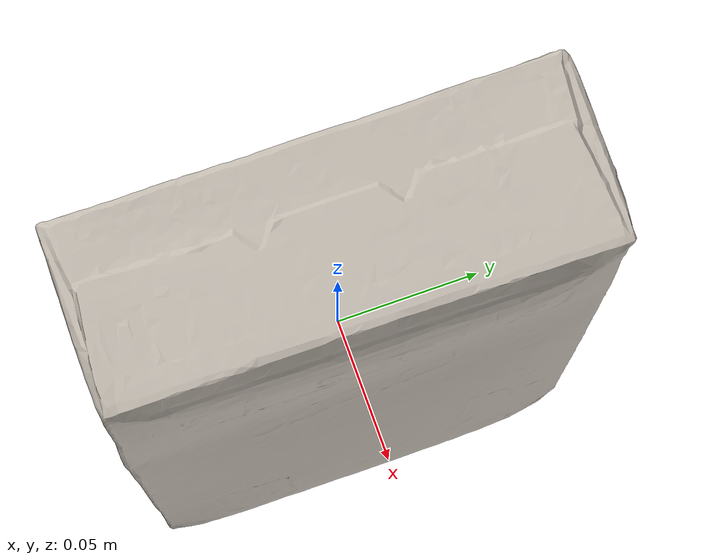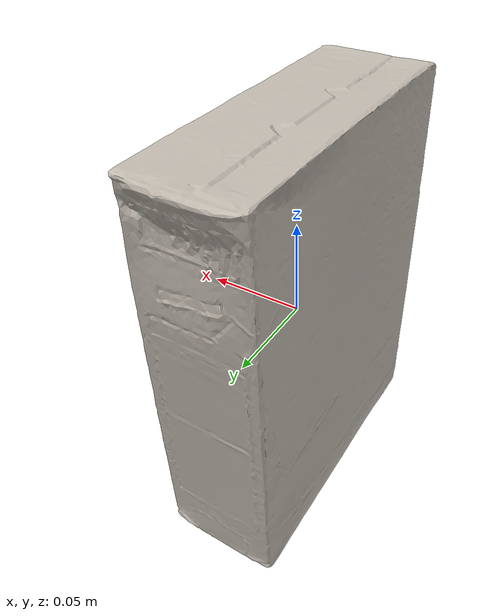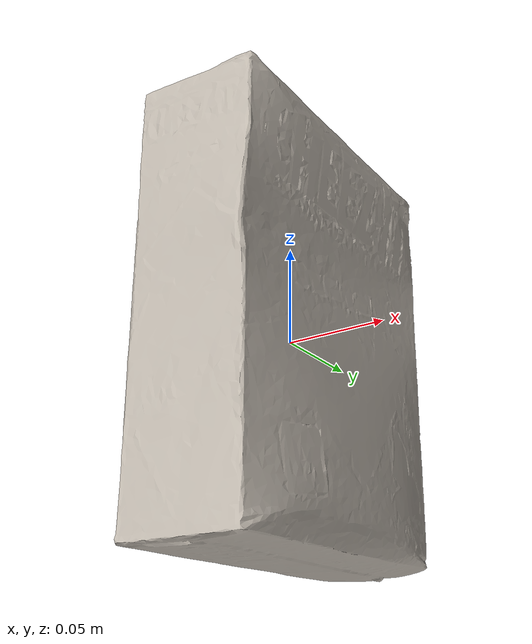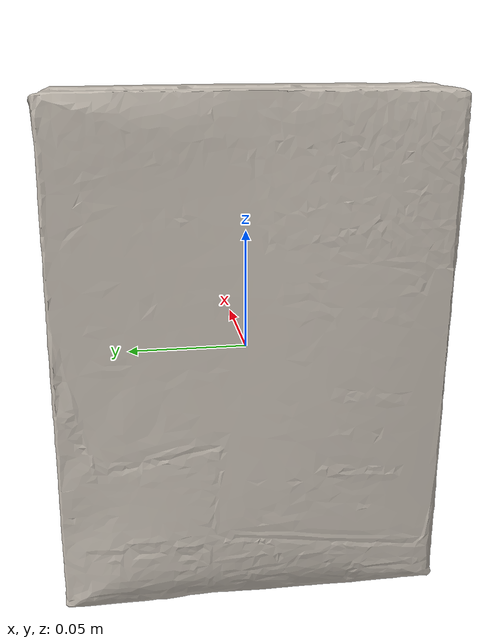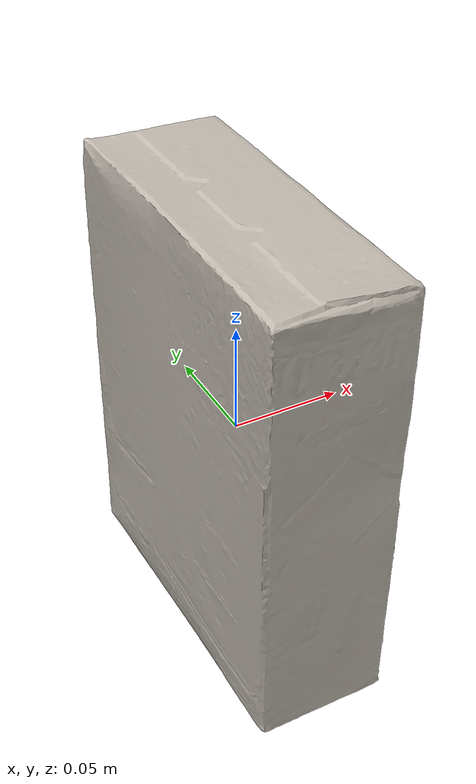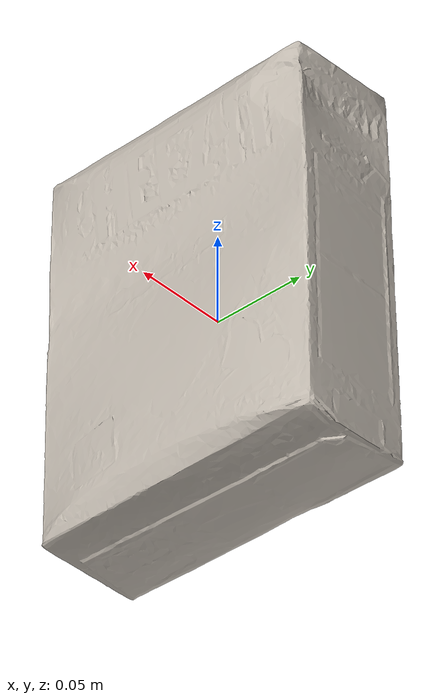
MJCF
<mujoco model="cracker_box">
  <compiler angle="radian" />

  <asset>
    <mesh name="cracker_box_visual_mesh" file="cracker_box/textured.obj" />
    <mesh name="cracker_box_collision_mesh_0" file="cracker_box/textured_coacd_0.stl" />
    <mesh name="cracker_box_collision_mesh_1" file="cracker_box/textured_coacd_1.stl" />
    <texture name="cracker_box_texture" type="2d" file="cracker_box/texture_map.png" />
    <material name="cracker_box_material" texture="cracker_box_texture" />
  </asset>

  <worldbody>
    <body name="cracker_box" pos="0 0 0" euler="0 0 0">
      <freejoint name="cracker_box_joint" />
      <geom name="cracker_box_visual_geom" type="mesh" mesh="cracker_box_visual_mesh" material="cracker_box_material" pos="-0.0 -0.0 -0.0" euler="0 0 0" contype="0" conaffinity="0" group="0" />
      <geom name="cracker_box_collision_geom_0" type="mesh" mesh="cracker_box_collision_mesh_0" pos="-0.0 -0.0 -0.0" euler="0 0 0" contype="1" conaffinity="1" group="3" />
      <geom name="cracker_box_collision_geom_1" type="mesh" mesh="cracker_box_collision_mesh_1" pos="-0.0 -0.0 -0.0" euler="0 0 0" contype="1" conaffinity="1" group="3" />
      <inertial pos="0 0 0" euler="0 0 0" mass="0.411" diaginertia="0.001 0.001 0.001" />
    </body>
  </worldbody>
</mujoco>
